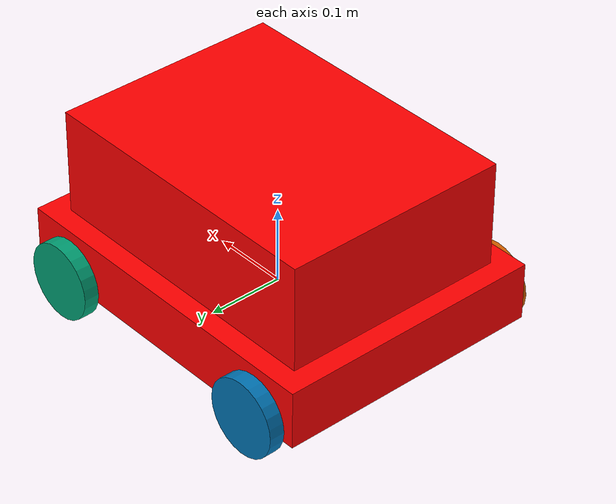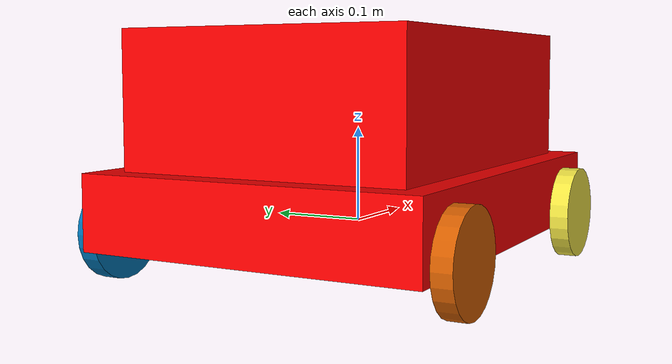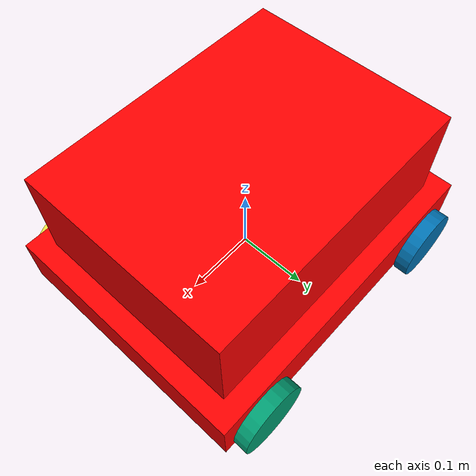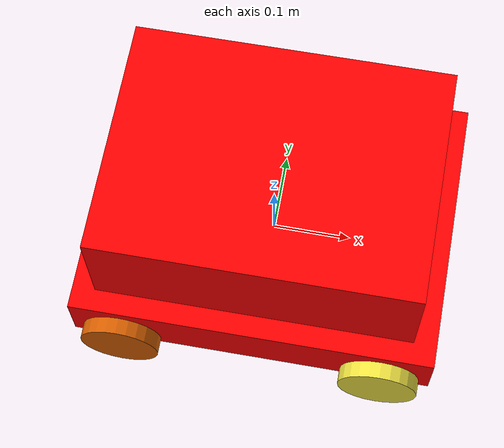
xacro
<?xml version="1.0"?>

<robot xmlns:xacro="http://www.ros.org/wiki/xacro" name = "thaara_bot">

    <link name="world"/>

    <link name="base_link">
        <visual>
            <geometry>
                <box size="0.4572 0.3556 0.0762"/>
            </geometry>
            <material name="wheel_base_colour">
                <color rgba="255 0 0 1"/>
            </material>
        </visual>

        <collision>
            <geometry>
                <box size="0.4572 0.3556 0.0762"/>
            </geometry>
            <origin xyz="0 0 0" rpy="0 0 0"/>
        </collision>

        <inertial>
            <origin xyz="0.0 0.0 0.0" rpy="0.0 0.0 0.0"/>
            <mass value="5.0"/>
            <inertia ixx="0.054" ixy="0.0" ixz="0.0" iyy="0.088" iyz="0.0" izz="0.136"/>
        </inertial>

    </link>

    <joint name="base_joint" type="fixed">

        <parent link="world"/>
        <child link="base_link"/>
        <origin xyz="0.0 0.0 0.025" rpy="0.0 0.0 0.0"/>

    </joint>

    <xacro:macro name="wheel" params="name x y z">
        <link name="${name}_link">
            <visual>
                <geometry>
                    <cylinder radius="0.05" length="0.02"/>
                </geometry>
                <origin xyz="0.0 0.0 0.0" rpy="1.5708 0.0 0.0"/>
            </visual>

            <collision>
                 <geometry>
                    <cylinder radius="0.05" length="0.02"/>
                    <origin xyz="0.0 0.0 0.0" rpy="1.5708 0.0 0.0"/>
                 </geometry>
            </collision>

            <inertial>
                <mass value="0.5"/>
                <inertia ixx="0.000329" ixy="0.0" ixz="0.0" iyy="0.000329" iyz="0.0" izz="0.000625"/>
            </inertial>

        </link>

    </xacro:macro>

    <xacro:wheel name="front_left" x="0.2" y="0.3" z="-0.05"/>
    <xacro:wheel name="front_right" x="0.2" y="-0.3" z="-0.05"/>
    <xacro:wheel name="rear_left" x="-0.2" y="0.3" z="-0.05"/>
    <xacro:wheel name="rear_right" x="-0.2" y="-0.3" z="-0.05"/>

    <xacro:macro name="wheel_joint" params="name x y z">
        <joint name="${name}_joint" type="continuous">
            <parent link="base_link"/>
            <child link="${name}_link"/>
            <origin xyz="${x} ${y} ${z}" rpy="0.0 0.0 0.0"/>
            <axis xyz="0.0 1.0 0.0"/>

        </joint>

    </xacro:macro>

    <xacro:wheel_joint name="front_left" x="0.1651" y="0.1878" z="-0.025"/>
    <xacro:wheel_joint name="front_right" x="0.1651" y="-0.1878" z="-0.025"/>
    <xacro:wheel_joint name="rear_left" x="-0.1651" y="0.1878" z="-0.025"/>
    <xacro:wheel_joint name="rear_right" x="-0.1651" y="-0.1878" z="-0.025"/>

    <link name="base_link_2">
        <visual>
            <origin xyz="0.0 0.0 0.0" rpy="0.0 0.0 0.0"/>
            <geometry>
                <box size="0.4 0.3 0.15"/>
            </geometry>
            <material name="wheel_base_colour">
                <color rgba="255 0 0 1"/>
            </material>
        </visual>

    </link>

    <joint name="base_link_2_joint" type="fixed">
        <parent link="base_link"/>
        <child link="base_link_2"/>
        <origin xyz="0.0 0.0 0.1012" rpy="0.0 0.0 0.0"/>

    </joint>

</robot>
